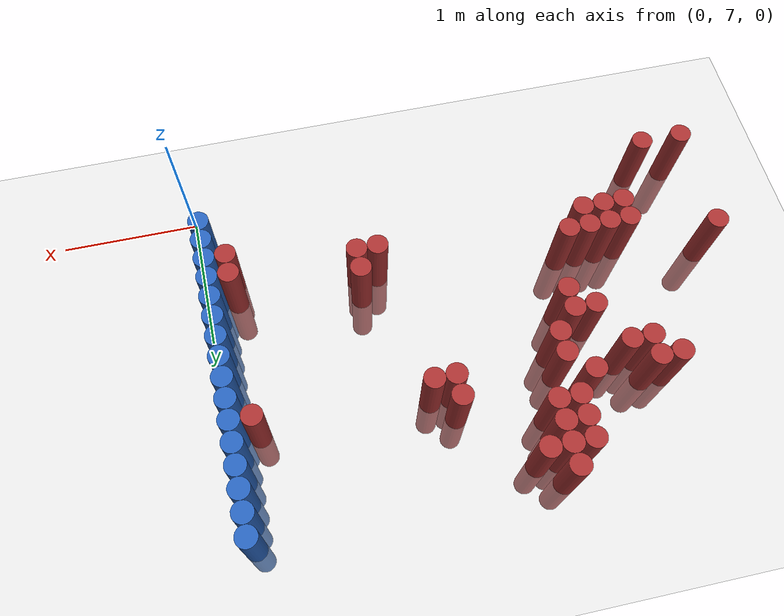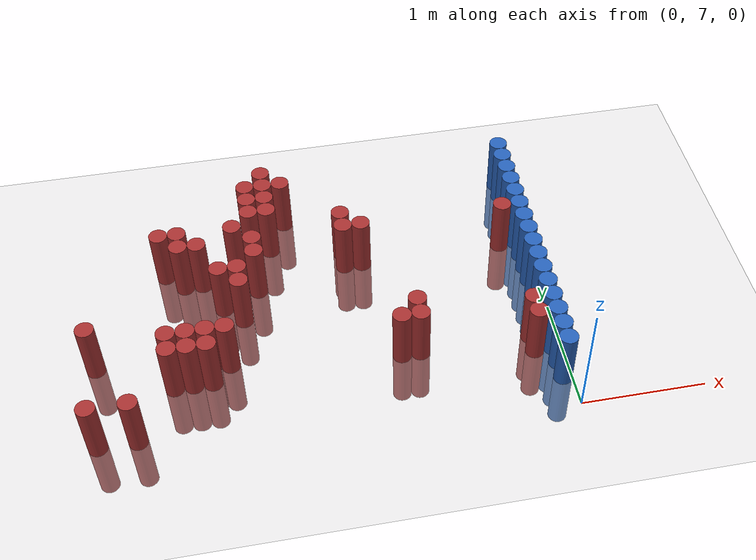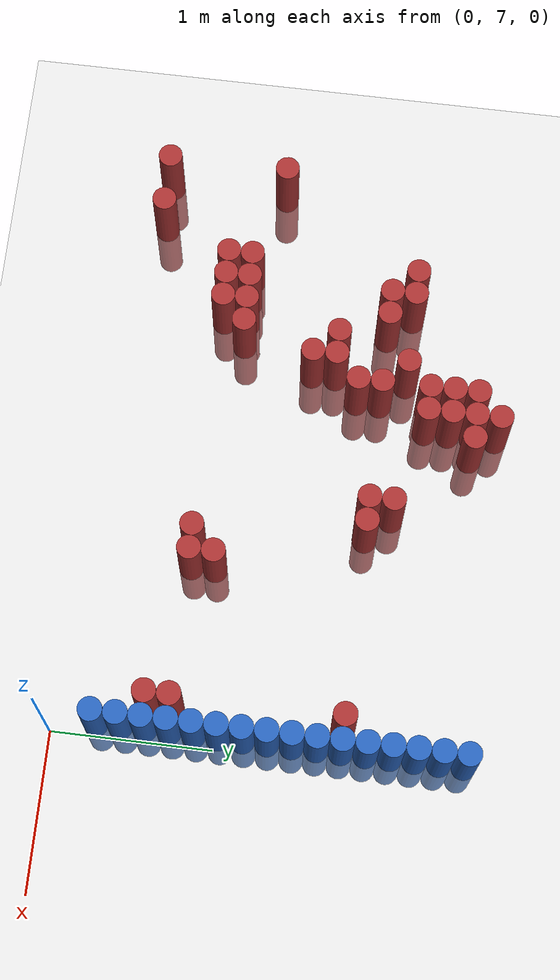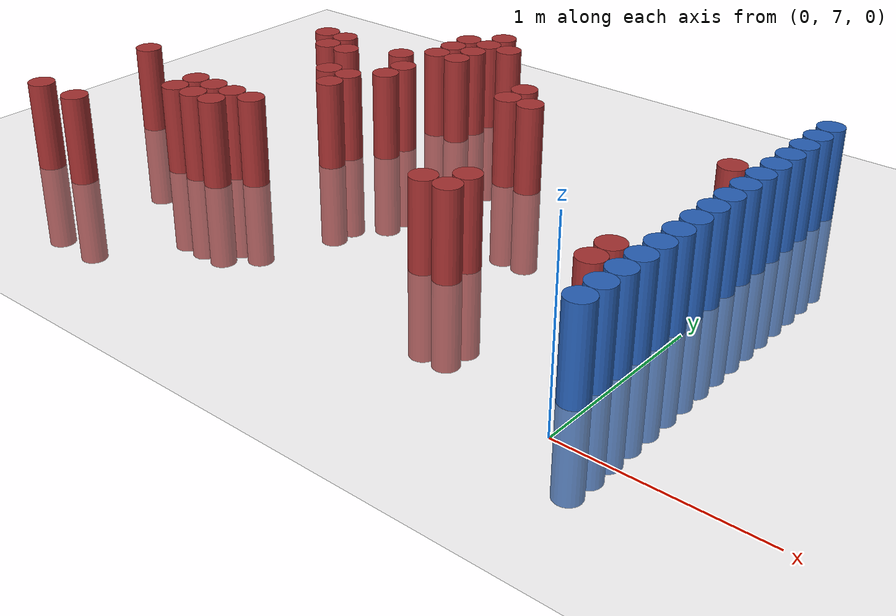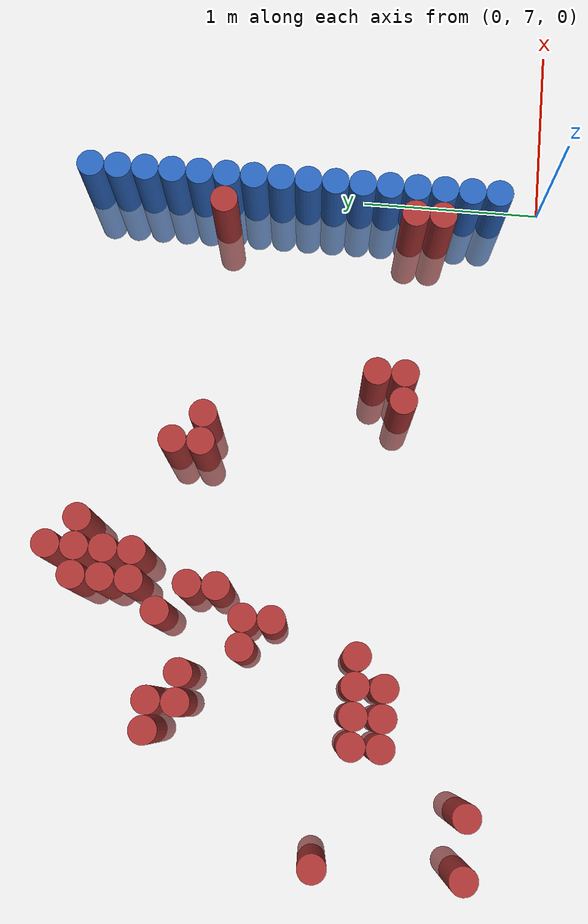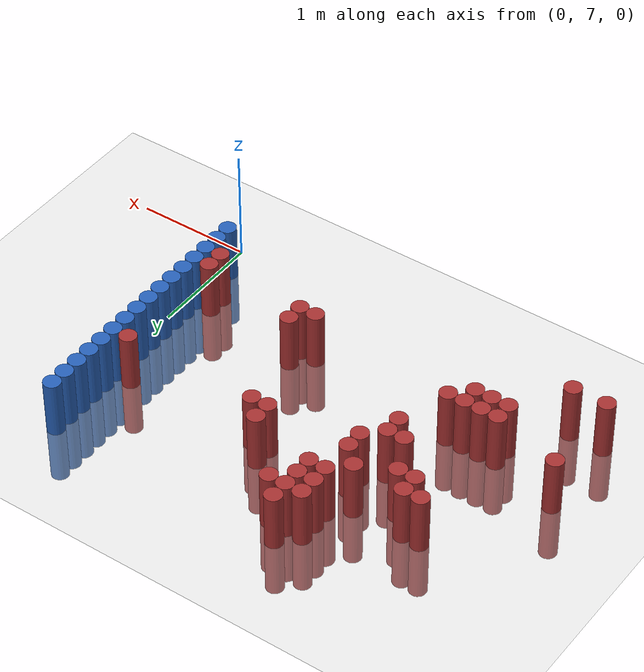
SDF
<sdf version="1.6">
 <world name="default">
  <model name="ground_plane">
   <static>1</static>
   <link name="link">
    <collision name="collision">
     <geometry><plane><normal>0 0 1</normal><size>100 100</size></plane></geometry>
     <surface><friction><ode><mu>100</mu><mu2>50</mu2></ode></friction></surface>
    </collision>
    <visual name="visual">
     <cast_shadows>0</cast_shadows>
     <geometry><plane><normal>0 0 1</normal><size>100 100</size></plane></geometry>
     <material>
      <script><uri>file://media/materials/scripts/gazebo.material</uri><name>Gazebo/Grey</name></script>
     </material>
    </visual>
   </link>
  </model>
  <model name="unit_cylinder_150">
   <static>1</static>
   <pose>-3.675000 7.275000 0.000000 0.000000 0.000000 0.000000</pose>
   <link name="link">
    <inertial>
     <mass>1</mass>
     <inertia><ixx>0.145833</ixx><ixy>0</ixy><ixz>0</ixz><iyy>0.145833</iyy><iyz>0</iyz><izz>0.125</izz></inertia>
    </inertial>
    <collision name="collision">
     <geometry><cylinder><radius>0.075000</radius><length>1</length></cylinder></geometry>
    </collision>
    <visual name="visual">
     <geometry><cylinder><radius>0.075000</radius><length>1</length></cylinder></geometry>
     <material>
      <ambient>0.648000 0.192000 0.192000 1</ambient>
      <diffuse>0.648000 0.192000 0.192000 1</diffuse>
     </material>
     <material>
      <script><name>Gazebo/Grey</name><uri>file://media/materials/scripts/gazebo.material</uri></script>
     </material>
    </visual>
   </link>
  </model>
  <model name="unit_cylinder_151">
   <static>1</static>
   <pose>-3.675000 8.025000 0.000000 0.000000 0.000000 0.000000</pose>
   <link name="link">
    <inertial>
     <mass>1</mass>
     <inertia><ixx>0.145833</ixx><ixy>0</ixy><ixz>0</ixz><iyy>0.145833</iyy><iyz>0</iyz><izz>0.125</izz></inertia>
    </inertial>
    <collision name="collision">
     <geometry><cylinder><radius>0.075000</radius><length>1</length></cylinder></geometry>
    </collision>
    <visual name="visual">
     <geometry><cylinder><radius>0.075000</radius><length>1</length></cylinder></geometry>
     <material>
      <ambient>0.648000 0.192000 0.192000 1</ambient>
      <diffuse>0.648000 0.192000 0.192000 1</diffuse>
     </material>
     <material>
      <script><name>Gazebo/Grey</name><uri>file://media/materials/scripts/gazebo.material</uri></script>
     </material>
    </visual>
   </link>
  </model>
  <model name="unit_cylinder_164">
   <static>1</static>
   <pose>-3.375000 7.275000 0.000000 0.000000 0.000000 0.000000</pose>
   <link name="link">
    <inertial>
     <mass>1</mass>
     <inertia><ixx>0.145833</ixx><ixy>0</ixy><ixz>0</ixz><iyy>0.145833</iyy><iyz>0</iyz><izz>0.125</izz></inertia>
    </inertial>
    <collision name="collision">
     <geometry><cylinder><radius>0.075000</radius><length>1</length></cylinder></geometry>
    </collision>
    <visual name="visual">
     <geometry><cylinder><radius>0.075000</radius><length>1</length></cylinder></geometry>
     <material>
      <ambient>0.648000 0.192000 0.192000 1</ambient>
      <diffuse>0.648000 0.192000 0.192000 1</diffuse>
     </material>
     <material>
      <script><name>Gazebo/Grey</name><uri>file://media/materials/scripts/gazebo.material</uri></script>
     </material>
    </visual>
   </link>
  </model>
  <model name="unit_cylinder_179">
   <static>1</static>
   <pose>-3.075000 7.725000 0.000000 0.000000 0.000000 0.000000</pose>
   <link name="link">
    <inertial>
     <mass>1</mass>
     <inertia><ixx>0.145833</ixx><ixy>0</ixy><ixz>0</ixz><iyy>0.145833</iyy><iyz>0</iyz><izz>0.125</izz></inertia>
    </inertial>
    <collision name="collision">
     <geometry><cylinder><radius>0.075000</radius><length>1</length></cylinder></geometry>
    </collision>
    <visual name="visual">
     <geometry><cylinder><radius>0.075000</radius><length>1</length></cylinder></geometry>
     <material>
      <ambient>0.648000 0.192000 0.192000 1</ambient>
      <diffuse>0.648000 0.192000 0.192000 1</diffuse>
     </material>
     <material>
      <script><name>Gazebo/Grey</name><uri>file://media/materials/scripts/gazebo.material</uri></script>
     </material>
    </visual>
   </link>
  </model>
  <model name="unit_cylinder_180">
   <static>1</static>
   <pose>-3.075000 7.875000 0.000000 0.000000 0.000000 0.000000</pose>
   <link name="link">
    <inertial>
     <mass>1</mass>
     <inertia><ixx>0.145833</ixx><ixy>0</ixy><ixz>0</ixz><iyy>0.145833</iyy><iyz>0</iyz><izz>0.125</izz></inertia>
    </inertial>
    <collision name="collision">
     <geometry><cylinder><radius>0.075000</radius><length>1</length></cylinder></geometry>
    </collision>
    <visual name="visual">
     <geometry><cylinder><radius>0.075000</radius><length>1</length></cylinder></geometry>
     <material>
      <ambient>0.648000 0.192000 0.192000 1</ambient>
      <diffuse>0.648000 0.192000 0.192000 1</diffuse>
     </material>
     <material>
      <script><name>Gazebo/Grey</name><uri>file://media/materials/scripts/gazebo.material</uri></script>
     </material>
    </visual>
   </link>
  </model>
  <model name="unit_cylinder_181">
   <static>1</static>
   <pose>-3.075000 8.925000 0.000000 0.000000 0.000000 0.000000</pose>
   <link name="link">
    <inertial>
     <mass>1</mass>
     <inertia><ixx>0.145833</ixx><ixy>0</ixy><ixz>0</ixz><iyy>0.145833</iyy><iyz>0</iyz><izz>0.125</izz></inertia>
    </inertial>
    <collision name="collision">
     <geometry><cylinder><radius>0.075000</radius><length>1</length></cylinder></geometry>
    </collision>
    <visual name="visual">
     <geometry><cylinder><radius>0.075000</radius><length>1</length></cylinder></geometry>
     <material>
      <ambient>0.648000 0.192000 0.192000 1</ambient>
      <diffuse>0.648000 0.192000 0.192000 1</diffuse>
     </material>
     <material>
      <script><name>Gazebo/Grey</name><uri>file://media/materials/scripts/gazebo.material</uri></script>
     </material>
    </visual>
   </link>
  </model>
  <model name="unit_cylinder_186">
   <static>1</static>
   <pose>-2.925000 7.725000 0.000000 0.000000 0.000000 0.000000</pose>
   <link name="link">
    <inertial>
     <mass>1</mass>
     <inertia><ixx>0.145833</ixx><ixy>0</ixy><ixz>0</ixz><iyy>0.145833</iyy><iyz>0</iyz><izz>0.125</izz></inertia>
    </inertial>
    <collision name="collision">
     <geometry><cylinder><radius>0.075000</radius><length>1</length></cylinder></geometry>
    </collision>
    <visual name="visual">
     <geometry><cylinder><radius>0.075000</radius><length>1</length></cylinder></geometry>
     <material>
      <ambient>0.648000 0.192000 0.192000 1</ambient>
      <diffuse>0.648000 0.192000 0.192000 1</diffuse>
     </material>
     <material>
      <script><name>Gazebo/Grey</name><uri>file://media/materials/scripts/gazebo.material</uri></script>
     </material>
    </visual>
   </link>
  </model>
  <model name="unit_cylinder_187">
   <static>1</static>
   <pose>-2.925000 7.875000 0.000000 0.000000 0.000000 0.000000</pose>
   <link name="link">
    <inertial>
     <mass>1</mass>
     <inertia><ixx>0.145833</ixx><ixy>0</ixy><ixz>0</ixz><iyy>0.145833</iyy><iyz>0</iyz><izz>0.125</izz></inertia>
    </inertial>
    <collision name="collision">
     <geometry><cylinder><radius>0.075000</radius><length>1</length></cylinder></geometry>
    </collision>
    <visual name="visual">
     <geometry><cylinder><radius>0.075000</radius><length>1</length></cylinder></geometry>
     <material>
      <ambient>0.648000 0.192000 0.192000 1</ambient>
      <diffuse>0.648000 0.192000 0.192000 1</diffuse>
     </material>
     <material>
      <script><name>Gazebo/Grey</name><uri>file://media/materials/scripts/gazebo.material</uri></script>
     </material>
    </visual>
   </link>
  </model>
  <model name="unit_cylinder_188">
   <static>1</static>
   <pose>-2.925000 8.775000 0.000000 0.000000 0.000000 0.000000</pose>
   <link name="link">
    <inertial>
     <mass>1</mass>
     <inertia><ixx>0.145833</ixx><ixy>0</ixy><ixz>0</ixz><iyy>0.145833</iyy><iyz>0</iyz><izz>0.125</izz></inertia>
    </inertial>
    <collision name="collision">
     <geometry><cylinder><radius>0.075000</radius><length>1</length></cylinder></geometry>
    </collision>
    <visual name="visual">
     <geometry><cylinder><radius>0.075000</radius><length>1</length></cylinder></geometry>
     <material>
      <ambient>0.648000 0.192000 0.192000 1</ambient>
      <diffuse>0.648000 0.192000 0.192000 1</diffuse>
     </material>
     <material>
      <script><name>Gazebo/Grey</name><uri>file://media/materials/scripts/gazebo.material</uri></script>
     </material>
    </visual>
   </link>
  </model>
  <model name="unit_cylinder_189">
   <static>1</static>
   <pose>-2.925000 8.925000 0.000000 0.000000 0.000000 0.000000</pose>
   <link name="link">
    <inertial>
     <mass>1</mass>
     <inertia><ixx>0.145833</ixx><ixy>0</ixy><ixz>0</ixz><iyy>0.145833</iyy><iyz>0</iyz><izz>0.125</izz></inertia>
    </inertial>
    <collision name="collision">
     <geometry><cylinder><radius>0.075000</radius><length>1</length></cylinder></geometry>
    </collision>
    <visual name="visual">
     <geometry><cylinder><radius>0.075000</radius><length>1</length></cylinder></geometry>
     <material>
      <ambient>0.648000 0.192000 0.192000 1</ambient>
      <diffuse>0.648000 0.192000 0.192000 1</diffuse>
     </material>
     <material>
      <script><name>Gazebo/Grey</name><uri>file://media/materials/scripts/gazebo.material</uri></script>
     </material>
    </visual>
   </link>
  </model>
  <model name="unit_cylinder_191">
   <static>1</static>
   <pose>-2.775000 7.725000 0.000000 0.000000 0.000000 0.000000</pose>
   <link name="link">
    <inertial>
     <mass>1</mass>
     <inertia><ixx>0.145833</ixx><ixy>0</ixy><ixz>0</ixz><iyy>0.145833</iyy><iyz>0</iyz><izz>0.125</izz></inertia>
    </inertial>
    <collision name="collision">
     <geometry><cylinder><radius>0.075000</radius><length>1</length></cylinder></geometry>
    </collision>
    <visual name="visual">
     <geometry><cylinder><radius>0.075000</radius><length>1</length></cylinder></geometry>
     <material>
      <ambient>0.648000 0.192000 0.192000 1</ambient>
      <diffuse>0.648000 0.192000 0.192000 1</diffuse>
     </material>
     <material>
      <script><name>Gazebo/Grey</name><uri>file://media/materials/scripts/gazebo.material</uri></script>
     </material>
    </visual>
   </link>
  </model>
  <model name="unit_cylinder_192">
   <static>1</static>
   <pose>-2.775000 7.875000 0.000000 0.000000 0.000000 0.000000</pose>
   <link name="link">
    <inertial>
     <mass>1</mass>
     <inertia><ixx>0.145833</ixx><ixy>0</ixy><ixz>0</ixz><iyy>0.145833</iyy><iyz>0</iyz><izz>0.125</izz></inertia>
    </inertial>
    <collision name="collision">
     <geometry><cylinder><radius>0.075000</radius><length>1</length></cylinder></geometry>
    </collision>
    <visual name="visual">
     <geometry><cylinder><radius>0.075000</radius><length>1</length></cylinder></geometry>
     <material>
      <ambient>0.648000 0.192000 0.192000 1</ambient>
      <diffuse>0.648000 0.192000 0.192000 1</diffuse>
     </material>
     <material>
      <script><name>Gazebo/Grey</name><uri>file://media/materials/scripts/gazebo.material</uri></script>
     </material>
    </visual>
   </link>
  </model>
  <model name="unit_cylinder_193">
   <static>1</static>
   <pose>-2.775000 8.775000 0.000000 0.000000 0.000000 0.000000</pose>
   <link name="link">
    <inertial>
     <mass>1</mass>
     <inertia><ixx>0.145833</ixx><ixy>0</ixy><ixz>0</ixz><iyy>0.145833</iyy><iyz>0</iyz><izz>0.125</izz></inertia>
    </inertial>
    <collision name="collision">
     <geometry><cylinder><radius>0.075000</radius><length>1</length></cylinder></geometry>
    </collision>
    <visual name="visual">
     <geometry><cylinder><radius>0.075000</radius><length>1</length></cylinder></geometry>
     <material>
      <ambient>0.648000 0.192000 0.192000 1</ambient>
      <diffuse>0.648000 0.192000 0.192000 1</diffuse>
     </material>
     <material>
      <script><name>Gazebo/Grey</name><uri>file://media/materials/scripts/gazebo.material</uri></script>
     </material>
    </visual>
   </link>
  </model>
  <model name="unit_cylinder_194">
   <static>1</static>
   <pose>-2.625000 7.875000 0.000000 0.000000 0.000000 0.000000</pose>
   <link name="link">
    <inertial>
     <mass>1</mass>
     <inertia><ixx>0.145833</ixx><ixy>0</ixy><ixz>0</ixz><iyy>0.145833</iyy><iyz>0</iyz><izz>0.125</izz></inertia>
    </inertial>
    <collision name="collision">
     <geometry><cylinder><radius>0.075000</radius><length>1</length></cylinder></geometry>
    </collision>
    <visual name="visual">
     <geometry><cylinder><radius>0.075000</radius><length>1</length></cylinder></geometry>
     <material>
      <ambient>0.648000 0.192000 0.192000 1</ambient>
      <diffuse>0.648000 0.192000 0.192000 1</diffuse>
     </material>
     <material>
      <script><name>Gazebo/Grey</name><uri>file://media/materials/scripts/gazebo.material</uri></script>
     </material>
    </visual>
   </link>
  </model>
  <model name="unit_cylinder_195">
   <static>1</static>
   <pose>-2.625000 8.475000 0.000000 0.000000 0.000000 0.000000</pose>
   <link name="link">
    <inertial>
     <mass>1</mass>
     <inertia><ixx>0.145833</ixx><ixy>0</ixy><ixz>0</ixz><iyy>0.145833</iyy><iyz>0</iyz><izz>0.125</izz></inertia>
    </inertial>
    <collision name="collision">
     <geometry><cylinder><radius>0.075000</radius><length>1</length></cylinder></geometry>
    </collision>
    <visual name="visual">
     <geometry><cylinder><radius>0.075000</radius><length>1</length></cylinder></geometry>
     <material>
      <ambient>0.648000 0.192000 0.192000 1</ambient>
      <diffuse>0.648000 0.192000 0.192000 1</diffuse>
     </material>
     <material>
      <script><name>Gazebo/Grey</name><uri>file://media/materials/scripts/gazebo.material</uri></script>
     </material>
    </visual>
   </link>
  </model>
  <model name="unit_cylinder_196">
   <static>1</static>
   <pose>-2.475000 8.325000 0.000000 0.000000 0.000000 0.000000</pose>
   <link name="link">
    <inertial>
     <mass>1</mass>
     <inertia><ixx>0.145833</ixx><ixy>0</ixy><ixz>0</ixz><iyy>0.145833</iyy><iyz>0</iyz><izz>0.125</izz></inertia>
    </inertial>
    <collision name="collision">
     <geometry><cylinder><radius>0.075000</radius><length>1</length></cylinder></geometry>
    </collision>
    <visual name="visual">
     <geometry><cylinder><radius>0.075000</radius><length>1</length></cylinder></geometry>
     <material>
      <ambient>0.648000 0.192000 0.192000 1</ambient>
      <diffuse>0.648000 0.192000 0.192000 1</diffuse>
     </material>
     <material>
      <script><name>Gazebo/Grey</name><uri>file://media/materials/scripts/gazebo.material</uri></script>
     </material>
    </visual>
   </link>
  </model>
  <model name="unit_cylinder_197">
   <static>1</static>
   <pose>-2.475000 8.475000 0.000000 0.000000 0.000000 0.000000</pose>
   <link name="link">
    <inertial>
     <mass>1</mass>
     <inertia><ixx>0.145833</ixx><ixy>0</ixy><ixz>0</ixz><iyy>0.145833</iyy><iyz>0</iyz><izz>0.125</izz></inertia>
    </inertial>
    <collision name="collision">
     <geometry><cylinder><radius>0.075000</radius><length>1</length></cylinder></geometry>
    </collision>
    <visual name="visual">
     <geometry><cylinder><radius>0.075000</radius><length>1</length></cylinder></geometry>
     <material>
      <ambient>0.648000 0.192000 0.192000 1</ambient>
      <diffuse>0.648000 0.192000 0.192000 1</diffuse>
     </material>
     <material>
      <script><name>Gazebo/Grey</name><uri>file://media/materials/scripts/gazebo.material</uri></script>
     </material>
    </visual>
   </link>
  </model>
  <model name="unit_cylinder_198">
   <static>1</static>
   <pose>-2.475000 8.925000 0.000000 0.000000 0.000000 0.000000</pose>
   <link name="link">
    <inertial>
     <mass>1</mass>
     <inertia><ixx>0.145833</ixx><ixy>0</ixy><ixz>0</ixz><iyy>0.145833</iyy><iyz>0</iyz><izz>0.125</izz></inertia>
    </inertial>
    <collision name="collision">
     <geometry><cylinder><radius>0.075000</radius><length>1</length></cylinder></geometry>
    </collision>
    <visual name="visual">
     <geometry><cylinder><radius>0.075000</radius><length>1</length></cylinder></geometry>
     <material>
      <ambient>0.648000 0.192000 0.192000 1</ambient>
      <diffuse>0.648000 0.192000 0.192000 1</diffuse>
     </material>
     <material>
      <script><name>Gazebo/Grey</name><uri>file://media/materials/scripts/gazebo.material</uri></script>
     </material>
    </visual>
   </link>
  </model>
  <model name="unit_cylinder_199">
   <static>1</static>
   <pose>-2.325000 8.625000 0.000000 0.000000 0.000000 0.000000</pose>
   <link name="link">
    <inertial>
     <mass>1</mass>
     <inertia><ixx>0.145833</ixx><ixy>0</ixy><ixz>0</ixz><iyy>0.145833</iyy><iyz>0</iyz><izz>0.125</izz></inertia>
    </inertial>
    <collision name="collision">
     <geometry><cylinder><radius>0.075000</radius><length>1</length></cylinder></geometry>
    </collision>
    <visual name="visual">
     <geometry><cylinder><radius>0.075000</radius><length>1</length></cylinder></geometry>
     <material>
      <ambient>0.648000 0.192000 0.192000 1</ambient>
      <diffuse>0.648000 0.192000 0.192000 1</diffuse>
     </material>
     <material>
      <script><name>Gazebo/Grey</name><uri>file://media/materials/scripts/gazebo.material</uri></script>
     </material>
    </visual>
   </link>
  </model>
  <model name="unit_cylinder_200">
   <static>1</static>
   <pose>-2.325000 8.775000 0.000000 0.000000 0.000000 0.000000</pose>
   <link name="link">
    <inertial>
     <mass>1</mass>
     <inertia><ixx>0.145833</ixx><ixy>0</ixy><ixz>0</ixz><iyy>0.145833</iyy><iyz>0</iyz><izz>0.125</izz></inertia>
    </inertial>
    <collision name="collision">
     <geometry><cylinder><radius>0.075000</radius><length>1</length></cylinder></geometry>
    </collision>
    <visual name="visual">
     <geometry><cylinder><radius>0.075000</radius><length>1</length></cylinder></geometry>
     <material>
      <ambient>0.648000 0.192000 0.192000 1</ambient>
      <diffuse>0.648000 0.192000 0.192000 1</diffuse>
     </material>
     <material>
      <script><name>Gazebo/Grey</name><uri>file://media/materials/scripts/gazebo.material</uri></script>
     </material>
    </visual>
   </link>
  </model>
  <model name="unit_cylinder_201">
   <static>1</static>
   <pose>-2.325000 9.075000 0.000000 0.000000 0.000000 0.000000</pose>
   <link name="link">
    <inertial>
     <mass>1</mass>
     <inertia><ixx>0.145833</ixx><ixy>0</ixy><ixz>0</ixz><iyy>0.145833</iyy><iyz>0</iyz><izz>0.125</izz></inertia>
    </inertial>
    <collision name="collision">
     <geometry><cylinder><radius>0.075000</radius><length>1</length></cylinder></geometry>
    </collision>
    <visual name="visual">
     <geometry><cylinder><radius>0.075000</radius><length>1</length></cylinder></geometry>
     <material>
      <ambient>0.648000 0.192000 0.192000 1</ambient>
      <diffuse>0.648000 0.192000 0.192000 1</diffuse>
     </material>
     <material>
      <script><name>Gazebo/Grey</name><uri>file://media/materials/scripts/gazebo.material</uri></script>
     </material>
    </visual>
   </link>
  </model>
  <model name="unit_cylinder_202">
   <static>1</static>
   <pose>-2.325000 9.225000 0.000000 0.000000 0.000000 0.000000</pose>
   <link name="link">
    <inertial>
     <mass>1</mass>
     <inertia><ixx>0.145833</ixx><ixy>0</ixy><ixz>0</ixz><iyy>0.145833</iyy><iyz>0</iyz><izz>0.125</izz></inertia>
    </inertial>
    <collision name="collision">
     <geometry><cylinder><radius>0.075000</radius><length>1</length></cylinder></geometry>
    </collision>
    <visual name="visual">
     <geometry><cylinder><radius>0.075000</radius><length>1</length></cylinder></geometry>
     <material>
      <ambient>0.648000 0.192000 0.192000 1</ambient>
      <diffuse>0.648000 0.192000 0.192000 1</diffuse>
     </material>
     <material>
      <script><name>Gazebo/Grey</name><uri>file://media/materials/scripts/gazebo.material</uri></script>
     </material>
    </visual>
   </link>
  </model>
  <model name="unit_cylinder_203">
   <static>1</static>
   <pose>-2.325000 9.375000 0.000000 0.000000 0.000000 0.000000</pose>
   <link name="link">
    <inertial>
     <mass>1</mass>
     <inertia><ixx>0.145833</ixx><ixy>0</ixy><ixz>0</ixz><iyy>0.145833</iyy><iyz>0</iyz><izz>0.125</izz></inertia>
    </inertial>
    <collision name="collision">
     <geometry><cylinder><radius>0.075000</radius><length>1</length></cylinder></geometry>
    </collision>
    <visual name="visual">
     <geometry><cylinder><radius>0.075000</radius><length>1</length></cylinder></geometry>
     <material>
      <ambient>0.648000 0.192000 0.192000 1</ambient>
      <diffuse>0.648000 0.192000 0.192000 1</diffuse>
     </material>
     <material>
      <script><name>Gazebo/Grey</name><uri>file://media/materials/scripts/gazebo.material</uri></script>
     </material>
    </visual>
   </link>
  </model>
  <model name="unit_cylinder_204">
   <static>1</static>
   <pose>-2.175000 9.075000 0.000000 0.000000 0.000000 0.000000</pose>
   <link name="link">
    <inertial>
     <mass>1</mass>
     <inertia><ixx>0.145833</ixx><ixy>0</ixy><ixz>0</ixz><iyy>0.145833</iyy><iyz>0</iyz><izz>0.125</izz></inertia>
    </inertial>
    <collision name="collision">
     <geometry><cylinder><radius>0.075000</radius><length>1</length></cylinder></geometry>
    </collision>
    <visual name="visual">
     <geometry><cylinder><radius>0.075000</radius><length>1</length></cylinder></geometry>
     <material>
      <ambient>0.648000 0.192000 0.192000 1</ambient>
      <diffuse>0.648000 0.192000 0.192000 1</diffuse>
     </material>
     <material>
      <script><name>Gazebo/Grey</name><uri>file://media/materials/scripts/gazebo.material</uri></script>
     </material>
    </visual>
   </link>
  </model>
  <model name="unit_cylinder_205">
   <static>1</static>
   <pose>-2.175000 9.225000 0.000000 0.000000 0.000000 0.000000</pose>
   <link name="link">
    <inertial>
     <mass>1</mass>
     <inertia><ixx>0.145833</ixx><ixy>0</ixy><ixz>0</ixz><iyy>0.145833</iyy><iyz>0</iyz><izz>0.125</izz></inertia>
    </inertial>
    <collision name="collision">
     <geometry><cylinder><radius>0.075000</radius><length>1</length></cylinder></geometry>
    </collision>
    <visual name="visual">
     <geometry><cylinder><radius>0.075000</radius><length>1</length></cylinder></geometry>
     <material>
      <ambient>0.648000 0.192000 0.192000 1</ambient>
      <diffuse>0.648000 0.192000 0.192000 1</diffuse>
     </material>
     <material>
      <script><name>Gazebo/Grey</name><uri>file://media/materials/scripts/gazebo.material</uri></script>
     </material>
    </visual>
   </link>
  </model>
  <model name="unit_cylinder_206">
   <static>1</static>
   <pose>-2.175000 9.375000 0.000000 0.000000 0.000000 0.000000</pose>
   <link name="link">
    <inertial>
     <mass>1</mass>
     <inertia><ixx>0.145833</ixx><ixy>0</ixy><ixz>0</ixz><iyy>0.145833</iyy><iyz>0</iyz><izz>0.125</izz></inertia>
    </inertial>
    <collision name="collision">
     <geometry><cylinder><radius>0.075000</radius><length>1</length></cylinder></geometry>
    </collision>
    <visual name="visual">
     <geometry><cylinder><radius>0.075000</radius><length>1</length></cylinder></geometry>
     <material>
      <ambient>0.648000 0.192000 0.192000 1</ambient>
      <diffuse>0.648000 0.192000 0.192000 1</diffuse>
     </material>
     <material>
      <script><name>Gazebo/Grey</name><uri>file://media/materials/scripts/gazebo.material</uri></script>
     </material>
    </visual>
   </link>
  </model>
  <model name="unit_cylinder_207">
   <static>1</static>
   <pose>-2.175000 9.525000 0.000000 0.000000 0.000000 0.000000</pose>
   <link name="link">
    <inertial>
     <mass>1</mass>
     <inertia><ixx>0.145833</ixx><ixy>0</ixy><ixz>0</ixz><iyy>0.145833</iyy><iyz>0</iyz><izz>0.125</izz></inertia>
    </inertial>
    <collision name="collision">
     <geometry><cylinder><radius>0.075000</radius><length>1</length></cylinder></geometry>
    </collision>
    <visual name="visual">
     <geometry><cylinder><radius>0.075000</radius><length>1</length></cylinder></geometry>
     <material>
      <ambient>0.648000 0.192000 0.192000 1</ambient>
      <diffuse>0.648000 0.192000 0.192000 1</diffuse>
     </material>
     <material>
      <script><name>Gazebo/Grey</name><uri>file://media/materials/scripts/gazebo.material</uri></script>
     </material>
    </visual>
   </link>
  </model>
  <model name="unit_cylinder_208">
   <static>1</static>
   <pose>-2.025000 9.375000 0.000000 0.000000 0.000000 0.000000</pose>
   <link name="link">
    <inertial>
     <mass>1</mass>
     <inertia><ixx>0.145833</ixx><ixy>0</ixy><ixz>0</ixz><iyy>0.145833</iyy><iyz>0</iyz><izz>0.125</izz></inertia>
    </inertial>
    <collision name="collision">
     <geometry><cylinder><radius>0.075000</radius><length>1</length></cylinder></geometry>
    </collision>
    <visual name="visual">
     <geometry><cylinder><radius>0.075000</radius><length>1</length></cylinder></geometry>
     <material>
      <ambient>0.648000 0.192000 0.192000 1</ambient>
      <diffuse>0.648000 0.192000 0.192000 1</diffuse>
     </material>
     <material>
      <script><name>Gazebo/Grey</name><uri>file://media/materials/scripts/gazebo.material</uri></script>
     </material>
    </visual>
   </link>
  </model>
  <model name="unit_cylinder_215">
   <static>1</static>
   <pose>-1.575000 8.775000 0.000000 0.000000 0.000000 0.000000</pose>
   <link name="link">
    <inertial>
     <mass>1</mass>
     <inertia><ixx>0.145833</ixx><ixy>0</ixy><ixz>0</ixz><iyy>0.145833</iyy><iyz>0</iyz><izz>0.125</izz></inertia>
    </inertial>
    <collision name="collision">
     <geometry><cylinder><radius>0.075000</radius><length>1</length></cylinder></geometry>
    </collision>
    <visual name="visual">
     <geometry><cylinder><radius>0.075000</radius><length>1</length></cylinder></geometry>
     <material>
      <ambient>0.648000 0.192000 0.192000 1</ambient>
      <diffuse>0.648000 0.192000 0.192000 1</diffuse>
     </material>
     <material>
      <script><name>Gazebo/Grey</name><uri>file://media/materials/scripts/gazebo.material</uri></script>
     </material>
    </visual>
   </link>
  </model>
  <model name="unit_cylinder_216">
   <static>1</static>
   <pose>-1.575000 8.925000 0.000000 0.000000 0.000000 0.000000</pose>
   <link name="link">
    <inertial>
     <mass>1</mass>
     <inertia><ixx>0.145833</ixx><ixy>0</ixy><ixz>0</ixz><iyy>0.145833</iyy><iyz>0</iyz><izz>0.125</izz></inertia>
    </inertial>
    <collision name="collision">
     <geometry><cylinder><radius>0.075000</radius><length>1</length></cylinder></geometry>
    </collision>
    <visual name="visual">
     <geometry><cylinder><radius>0.075000</radius><length>1</length></cylinder></geometry>
     <material>
      <ambient>0.648000 0.192000 0.192000 1</ambient>
      <diffuse>0.648000 0.192000 0.192000 1</diffuse>
     </material>
     <material>
      <script><name>Gazebo/Grey</name><uri>file://media/materials/scripts/gazebo.material</uri></script>
     </material>
    </visual>
   </link>
  </model>
  <model name="unit_cylinder_218">
   <static>1</static>
   <pose>-1.425000 8.775000 0.000000 0.000000 0.000000 0.000000</pose>
   <link name="link">
    <inertial>
     <mass>1</mass>
     <inertia><ixx>0.145833</ixx><ixy>0</ixy><ixz>0</ixz><iyy>0.145833</iyy><iyz>0</iyz><izz>0.125</izz></inertia>
    </inertial>
    <collision name="collision">
     <geometry><cylinder><radius>0.075000</radius><length>1</length></cylinder></geometry>
    </collision>
    <visual name="visual">
     <geometry><cylinder><radius>0.075000</radius><length>1</length></cylinder></geometry>
     <material>
      <ambient>0.648000 0.192000 0.192000 1</ambient>
      <diffuse>0.648000 0.192000 0.192000 1</diffuse>
     </material>
     <material>
      <script><name>Gazebo/Grey</name><uri>file://media/materials/scripts/gazebo.material</uri></script>
     </material>
    </visual>
   </link>
  </model>
  <model name="unit_cylinder_219">
   <static>1</static>
   <pose>-1.275000 7.725000 0.000000 0.000000 0.000000 0.000000</pose>
   <link name="link">
    <inertial>
     <mass>1</mass>
     <inertia><ixx>0.145833</ixx><ixy>0</ixy><ixz>0</ixz><iyy>0.145833</iyy><iyz>0</iyz><izz>0.125</izz></inertia>
    </inertial>
    <collision name="collision">
     <geometry><cylinder><radius>0.075000</radius><length>1</length></cylinder></geometry>
    </collision>
    <visual name="visual">
     <geometry><cylinder><radius>0.075000</radius><length>1</length></cylinder></geometry>
     <material>
      <ambient>0.648000 0.192000 0.192000 1</ambient>
      <diffuse>0.648000 0.192000 0.192000 1</diffuse>
     </material>
     <material>
      <script><name>Gazebo/Grey</name><uri>file://media/materials/scripts/gazebo.material</uri></script>
     </material>
    </visual>
   </link>
  </model>
  <model name="unit_cylinder_220">
   <static>1</static>
   <pose>-1.125000 7.725000 0.000000 0.000000 0.000000 0.000000</pose>
   <link name="link">
    <inertial>
     <mass>1</mass>
     <inertia><ixx>0.145833</ixx><ixy>0</ixy><ixz>0</ixz><iyy>0.145833</iyy><iyz>0</iyz><izz>0.125</izz></inertia>
    </inertial>
    <collision name="collision">
     <geometry><cylinder><radius>0.075000</radius><length>1</length></cylinder></geometry>
    </collision>
    <visual name="visual">
     <geometry><cylinder><radius>0.075000</radius><length>1</length></cylinder></geometry>
     <material>
      <ambient>0.648000 0.192000 0.192000 1</ambient>
      <diffuse>0.648000 0.192000 0.192000 1</diffuse>
     </material>
     <material>
      <script><name>Gazebo/Grey</name><uri>file://media/materials/scripts/gazebo.material</uri></script>
     </material>
    </visual>
   </link>
  </model>
  <model name="unit_cylinder_221">
   <static>1</static>
   <pose>-1.125000 7.875000 0.000000 0.000000 0.000000 0.000000</pose>
   <link name="link">
    <inertial>
     <mass>1</mass>
     <inertia><ixx>0.145833</ixx><ixy>0</ixy><ixz>0</ixz><iyy>0.145833</iyy><iyz>0</iyz><izz>0.125</izz></inertia>
    </inertial>
    <collision name="collision">
     <geometry><cylinder><radius>0.075000</radius><length>1</length></cylinder></geometry>
    </collision>
    <visual name="visual">
     <geometry><cylinder><radius>0.075000</radius><length>1</length></cylinder></geometry>
     <material>
      <ambient>0.648000 0.192000 0.192000 1</ambient>
      <diffuse>0.648000 0.192000 0.192000 1</diffuse>
     </material>
     <material>
      <script><name>Gazebo/Grey</name><uri>file://media/materials/scripts/gazebo.material</uri></script>
     </material>
    </visual>
   </link>
  </model>
  <model name="unit_cylinder_229">
   <static>1</static>
   <pose>-0.225000 7.575000 0.000000 0.000000 0.000000 0.000000</pose>
   <link name="link">
    <inertial>
     <mass>1</mass>
     <inertia><ixx>0.145833</ixx><ixy>0</ixy><ixz>0</ixz><iyy>0.145833</iyy><iyz>0</iyz><izz>0.125</izz></inertia>
    </inertial>
    <collision name="collision">
     <geometry><cylinder><radius>0.075000</radius><length>1</length></cylinder></geometry>
    </collision>
    <visual name="visual">
     <geometry><cylinder><radius>0.075000</radius><length>1</length></cylinder></geometry>
     <material>
      <ambient>0.648000 0.192000 0.192000 1</ambient>
      <diffuse>0.648000 0.192000 0.192000 1</diffuse>
     </material>
     <material>
      <script><name>Gazebo/Grey</name><uri>file://media/materials/scripts/gazebo.material</uri></script>
     </material>
    </visual>
   </link>
  </model>
  <model name="unit_cylinder_230">
   <static>1</static>
   <pose>-0.225000 7.725000 0.000000 0.000000 0.000000 0.000000</pose>
   <link name="link">
    <inertial>
     <mass>1</mass>
     <inertia><ixx>0.145833</ixx><ixy>0</ixy><ixz>0</ixz><iyy>0.145833</iyy><iyz>0</iyz><izz>0.125</izz></inertia>
    </inertial>
    <collision name="collision">
     <geometry><cylinder><radius>0.075000</radius><length>1</length></cylinder></geometry>
    </collision>
    <visual name="visual">
     <geometry><cylinder><radius>0.075000</radius><length>1</length></cylinder></geometry>
     <material>
      <ambient>0.648000 0.192000 0.192000 1</ambient>
      <diffuse>0.648000 0.192000 0.192000 1</diffuse>
     </material>
     <material>
      <script><name>Gazebo/Grey</name><uri>file://media/materials/scripts/gazebo.material</uri></script>
     </material>
    </visual>
   </link>
  </model>
  <model name="unit_cylinder_231">
   <static>1</static>
   <pose>-0.225000 8.775000 0.000000 0.000000 0.000000 0.000000</pose>
   <link name="link">
    <inertial>
     <mass>1</mass>
     <inertia><ixx>0.145833</ixx><ixy>0</ixy><ixz>0</ixz><iyy>0.145833</iyy><iyz>0</iyz><izz>0.125</izz></inertia>
    </inertial>
    <collision name="collision">
     <geometry><cylinder><radius>0.075000</radius><length>1</length></cylinder></geometry>
    </collision>
    <visual name="visual">
     <geometry><cylinder><radius>0.075000</radius><length>1</length></cylinder></geometry>
     <material>
      <ambient>0.648000 0.192000 0.192000 1</ambient>
      <diffuse>0.648000 0.192000 0.192000 1</diffuse>
     </material>
     <material>
      <script><name>Gazebo/Grey</name><uri>file://media/materials/scripts/gazebo.material</uri></script>
     </material>
    </visual>
   </link>
  </model>
  <model name="unit_cylinder_246">
   <static>1</static>
   <pose>-0.075000 7.275000 0.000000 0.000000 0.000000 0.000000</pose>
   <link name="link">
    <inertial>
     <mass>1</mass>
     <inertia><ixx>0.145833</ixx><ixy>0</ixy><ixz>0</ixz><iyy>0.145833</iyy><iyz>0</iyz><izz>0.125</izz></inertia>
    </inertial>
    <collision name="collision">
     <geometry><cylinder><radius>0.075000</radius><length>1</length></cylinder></geometry>
    </collision>
    <visual name="visual">
     <geometry><cylinder><radius>0.075000</radius><length>1</length></cylinder></geometry>
     <material>
      <ambient>0.152000 0.379000 0.720000 1</ambient>
      <diffuse>0.152000 0.379000 0.720000 1</diffuse>
     </material>
     <material>
      <script><name>Gazebo/Grey</name><uri>file://media/materials/scripts/gazebo.material</uri></script>
     </material>
    </visual>
   </link>
  </model>
  <model name="unit_cylinder_247">
   <static>1</static>
   <pose>-0.075000 7.425000 0.000000 0.000000 0.000000 0.000000</pose>
   <link name="link">
    <inertial>
     <mass>1</mass>
     <inertia><ixx>0.145833</ixx><ixy>0</ixy><ixz>0</ixz><iyy>0.145833</iyy><iyz>0</iyz><izz>0.125</izz></inertia>
    </inertial>
    <collision name="collision">
     <geometry><cylinder><radius>0.075000</radius><length>1</length></cylinder></geometry>
    </collision>
    <visual name="visual">
     <geometry><cylinder><radius>0.075000</radius><length>1</length></cylinder></geometry>
     <material>
      <ambient>0.152000 0.379000 0.720000 1</ambient>
      <diffuse>0.152000 0.379000 0.720000 1</diffuse>
     </material>
     <material>
      <script><name>Gazebo/Grey</name><uri>file://media/materials/scripts/gazebo.material</uri></script>
     </material>
    </visual>
   </link>
  </model>
  <model name="unit_cylinder_248">
   <static>1</static>
   <pose>-0.075000 7.575000 0.000000 0.000000 0.000000 0.000000</pose>
   <link name="link">
    <inertial>
     <mass>1</mass>
     <inertia><ixx>0.145833</ixx><ixy>0</ixy><ixz>0</ixz><iyy>0.145833</iyy><iyz>0</iyz><izz>0.125</izz></inertia>
    </inertial>
    <collision name="collision">
     <geometry><cylinder><radius>0.075000</radius><length>1</length></cylinder></geometry>
    </collision>
    <visual name="visual">
     <geometry><cylinder><radius>0.075000</radius><length>1</length></cylinder></geometry>
     <material>
      <ambient>0.152000 0.379000 0.720000 1</ambient>
      <diffuse>0.152000 0.379000 0.720000 1</diffuse>
     </material>
     <material>
      <script><name>Gazebo/Grey</name><uri>file://media/materials/scripts/gazebo.material</uri></script>
     </material>
    </visual>
   </link>
  </model>
  <model name="unit_cylinder_249">
   <static>1</static>
   <pose>-0.075000 7.725000 0.000000 0.000000 0.000000 0.000000</pose>
   <link name="link">
    <inertial>
     <mass>1</mass>
     <inertia><ixx>0.145833</ixx><ixy>0</ixy><ixz>0</ixz><iyy>0.145833</iyy><iyz>0</iyz><izz>0.125</izz></inertia>
    </inertial>
    <collision name="collision">
     <geometry><cylinder><radius>0.075000</radius><length>1</length></cylinder></geometry>
    </collision>
    <visual name="visual">
     <geometry><cylinder><radius>0.075000</radius><length>1</length></cylinder></geometry>
     <material>
      <ambient>0.152000 0.379000 0.720000 1</ambient>
      <diffuse>0.152000 0.379000 0.720000 1</diffuse>
     </material>
     <material>
      <script><name>Gazebo/Grey</name><uri>file://media/materials/scripts/gazebo.material</uri></script>
     </material>
    </visual>
   </link>
  </model>
  <model name="unit_cylinder_250">
   <static>1</static>
   <pose>-0.075000 7.875000 0.000000 0.000000 0.000000 0.000000</pose>
   <link name="link">
    <inertial>
     <mass>1</mass>
     <inertia><ixx>0.145833</ixx><ixy>0</ixy><ixz>0</ixz><iyy>0.145833</iyy><iyz>0</iyz><izz>0.125</izz></inertia>
    </inertial>
    <collision name="collision">
     <geometry><cylinder><radius>0.075000</radius><length>1</length></cylinder></geometry>
    </collision>
    <visual name="visual">
     <geometry><cylinder><radius>0.075000</radius><length>1</length></cylinder></geometry>
     <material>
      <ambient>0.152000 0.379000 0.720000 1</ambient>
      <diffuse>0.152000 0.379000 0.720000 1</diffuse>
     </material>
     <material>
      <script><name>Gazebo/Grey</name><uri>file://media/materials/scripts/gazebo.material</uri></script>
     </material>
    </visual>
   </link>
  </model>
  <model name="unit_cylinder_251">
   <static>1</static>
   <pose>-0.075000 8.025000 0.000000 0.000000 0.000000 0.000000</pose>
   <link name="link">
    <inertial>
     <mass>1</mass>
     <inertia><ixx>0.145833</ixx><ixy>0</ixy><ixz>0</ixz><iyy>0.145833</iyy><iyz>0</iyz><izz>0.125</izz></inertia>
    </inertial>
    <collision name="collision">
     <geometry><cylinder><radius>0.075000</radius><length>1</length></cylinder></geometry>
    </collision>
    <visual name="visual">
     <geometry><cylinder><radius>0.075000</radius><length>1</length></cylinder></geometry>
     <material>
      <ambient>0.152000 0.379000 0.720000 1</ambient>
      <diffuse>0.152000 0.379000 0.720000 1</diffuse>
     </material>
     <material>
      <script><name>Gazebo/Grey</name><uri>file://media/materials/scripts/gazebo.material</uri></script>
     </material>
    </visual>
   </link>
  </model>
  <model name="unit_cylinder_252">
   <static>1</static>
   <pose>-0.075000 8.175000 0.000000 0.000000 0.000000 0.000000</pose>
   <link name="link">
    <inertial>
     <mass>1</mass>
     <inertia><ixx>0.145833</ixx><ixy>0</ixy><ixz>0</ixz><iyy>0.145833</iyy><iyz>0</iyz><izz>0.125</izz></inertia>
    </inertial>
    <collision name="collision">
     <geometry><cylinder><radius>0.075000</radius><length>1</length></cylinder></geometry>
    </collision>
    <visual name="visual">
     <geometry><cylinder><radius>0.075000</radius><length>1</length></cylinder></geometry>
     <material>
      <ambient>0.152000 0.379000 0.720000 1</ambient>
      <diffuse>0.152000 0.379000 0.720000 1</diffuse>
     </material>
     <material>
      <script><name>Gazebo/Grey</name><uri>file://media/materials/scripts/gazebo.material</uri></script>
     </material>
    </visual>
   </link>
  </model>
  <model name="unit_cylinder_253">
   <static>1</static>
   <pose>-0.075000 8.325000 0.000000 0.000000 0.000000 0.000000</pose>
   <link name="link">
    <inertial>
     <mass>1</mass>
     <inertia><ixx>0.145833</ixx><ixy>0</ixy><ixz>0</ixz><iyy>0.145833</iyy><iyz>0</iyz><izz>0.125</izz></inertia>
    </inertial>
    <collision name="collision">
     <geometry><cylinder><radius>0.075000</radius><length>1</length></cylinder></geometry>
    </collision>
    <visual name="visual">
     <geometry><cylinder><radius>0.075000</radius><length>1</length></cylinder></geometry>
     <material>
      <ambient>0.152000 0.379000 0.720000 1</ambient>
      <diffuse>0.152000 0.379000 0.720000 1</diffuse>
     </material>
     <material>
      <script><name>Gazebo/Grey</name><uri>file://media/materials/scripts/gazebo.material</uri></script>
     </material>
    </visual>
   </link>
  </model>
  <model name="unit_cylinder_254">
   <static>1</static>
   <pose>-0.075000 8.475000 0.000000 0.000000 0.000000 0.000000</pose>
   <link name="link">
    <inertial>
     <mass>1</mass>
     <inertia><ixx>0.145833</ixx><ixy>0</ixy><ixz>0</ixz><iyy>0.145833</iyy><iyz>0</iyz><izz>0.125</izz></inertia>
    </inertial>
    <collision name="collision">
     <geometry><cylinder><radius>0.075000</radius><length>1</length></cylinder></geometry>
    </collision>
    <visual name="visual">
     <geometry><cylinder><radius>0.075000</radius><length>1</length></cylinder></geometry>
     <material>
      <ambient>0.152000 0.379000 0.720000 1</ambient>
      <diffuse>0.152000 0.379000 0.720000 1</diffuse>
     </material>
     <material>
      <script><name>Gazebo/Grey</name><uri>file://media/materials/scripts/gazebo.material</uri></script>
     </material>
    </visual>
   </link>
  </model>
  <model name="unit_cylinder_255">
   <static>1</static>
   <pose>-0.075000 8.625000 0.000000 0.000000 0.000000 0.000000</pose>
   <link name="link">
    <inertial>
     <mass>1</mass>
     <inertia><ixx>0.145833</ixx><ixy>0</ixy><ixz>0</ixz><iyy>0.145833</iyy><iyz>0</iyz><izz>0.125</izz></inertia>
    </inertial>
    <collision name="collision">
     <geometry><cylinder><radius>0.075000</radius><length>1</length></cylinder></geometry>
    </collision>
    <visual name="visual">
     <geometry><cylinder><radius>0.075000</radius><length>1</length></cylinder></geometry>
     <material>
      <ambient>0.152000 0.379000 0.720000 1</ambient>
      <diffuse>0.152000 0.379000 0.720000 1</diffuse>
     </material>
     <material>
      <script><name>Gazebo/Grey</name><uri>file://media/materials/scripts/gazebo.material</uri></script>
     </material>
    </visual>
   </link>
  </model>
  <model name="unit_cylinder_256">
   <static>1</static>
   <pose>-0.075000 8.775000 0.000000 0.000000 0.000000 0.000000</pose>
   <link name="link">
    <inertial>
     <mass>1</mass>
     <inertia><ixx>0.145833</ixx><ixy>0</ixy><ixz>0</ixz><iyy>0.145833</iyy><iyz>0</iyz><izz>0.125</izz></inertia>
    </inertial>
    <collision name="collision">
     <geometry><cylinder><radius>0.075000</radius><length>1</length></cylinder></geometry>
    </collision>
    <visual name="visual">
     <geometry><cylinder><radius>0.075000</radius><length>1</length></cylinder></geometry>
     <material>
      <ambient>0.152000 0.379000 0.720000 1</ambient>
      <diffuse>0.152000 0.379000 0.720000 1</diffuse>
     </material>
     <material>
      <script><name>Gazebo/Grey</name><uri>file://media/materials/scripts/gazebo.material</uri></script>
     </material>
    </visual>
   </link>
  </model>
  <model name="unit_cylinder_257">
   <static>1</static>
   <pose>-0.075000 8.925000 0.000000 0.000000 0.000000 0.000000</pose>
   <link name="link">
    <inertial>
     <mass>1</mass>
     <inertia><ixx>0.145833</ixx><ixy>0</ixy><ixz>0</ixz><iyy>0.145833</iyy><iyz>0</iyz><izz>0.125</izz></inertia>
    </inertial>
    <collision name="collision">
     <geometry><cylinder><radius>0.075000</radius><length>1</length></cylinder></geometry>
    </collision>
    <visual name="visual">
     <geometry><cylinder><radius>0.075000</radius><length>1</length></cylinder></geometry>
     <material>
      <ambient>0.152000 0.379000 0.720000 1</ambient>
      <diffuse>0.152000 0.379000 0.720000 1</diffuse>
     </material>
     <material>
      <script><name>Gazebo/Grey</name><uri>file://media/materials/scripts/gazebo.material</uri></script>
     </material>
    </visual>
   </link>
  </model>
  <model name="unit_cylinder_258">
   <static>1</static>
   <pose>-0.075000 9.075000 0.000000 0.000000 0.000000 0.000000</pose>
   <link name="link">
    <inertial>
     <mass>1</mass>
     <inertia><ixx>0.145833</ixx><ixy>0</ixy><ixz>0</ixz><iyy>0.145833</iyy><iyz>0</iyz><izz>0.125</izz></inertia>
    </inertial>
    <collision name="collision">
     <geometry><cylinder><radius>0.075000</radius><length>1</length></cylinder></geometry>
    </collision>
    <visual name="visual">
     <geometry><cylinder><radius>0.075000</radius><length>1</length></cylinder></geometry>
     <material>
      <ambient>0.152000 0.379000 0.720000 1</ambient>
      <diffuse>0.152000 0.379000 0.720000 1</diffuse>
     </material>
     <material>
      <script><name>Gazebo/Grey</name><uri>file://media/materials/scripts/gazebo.material</uri></script>
     </material>
    </visual>
   </link>
  </model>
  <model name="unit_cylinder_259">
   <static>1</static>
   <pose>-0.075000 9.225000 0.000000 0.000000 0.000000 0.000000</pose>
   <link name="link">
    <inertial>
     <mass>1</mass>
     <inertia><ixx>0.145833</ixx><ixy>0</ixy><ixz>0</ixz><iyy>0.145833</iyy><iyz>0</iyz><izz>0.125</izz></inertia>
    </inertial>
    <collision name="collision">
     <geometry><cylinder><radius>0.075000</radius><length>1</length></cylinder></geometry>
    </collision>
    <visual name="visual">
     <geometry><cylinder><radius>0.075000</radius><length>1</length></cylinder></geometry>
     <material>
      <ambient>0.152000 0.379000 0.720000 1</ambient>
      <diffuse>0.152000 0.379000 0.720000 1</diffuse>
     </material>
     <material>
      <script><name>Gazebo/Grey</name><uri>file://media/materials/scripts/gazebo.material</uri></script>
     </material>
    </visual>
   </link>
  </model>
  <model name="unit_cylinder_260">
   <static>1</static>
   <pose>-0.075000 9.375000 0.000000 0.000000 0.000000 0.000000</pose>
   <link name="link">
    <inertial>
     <mass>1</mass>
     <inertia><ixx>0.145833</ixx><ixy>0</ixy><ixz>0</ixz><iyy>0.145833</iyy><iyz>0</iyz><izz>0.125</izz></inertia>
    </inertial>
    <collision name="collision">
     <geometry><cylinder><radius>0.075000</radius><length>1</length></cylinder></geometry>
    </collision>
    <visual name="visual">
     <geometry><cylinder><radius>0.075000</radius><length>1</length></cylinder></geometry>
     <material>
      <ambient>0.152000 0.379000 0.720000 1</ambient>
      <diffuse>0.152000 0.379000 0.720000 1</diffuse>
     </material>
     <material>
      <script><name>Gazebo/Grey</name><uri>file://media/materials/scripts/gazebo.material</uri></script>
     </material>
    </visual>
   </link>
  </model>
  <model name="unit_cylinder_261">
   <static>1</static>
   <pose>-0.075000 9.525000 0.000000 0.000000 0.000000 0.000000</pose>
   <link name="link">
    <inertial>
     <mass>1</mass>
     <inertia><ixx>0.145833</ixx><ixy>0</ixy><ixz>0</ixz><iyy>0.145833</iyy><iyz>0</iyz><izz>0.125</izz></inertia>
    </inertial>
    <collision name="collision">
     <geometry><cylinder><radius>0.075000</radius><length>1</length></cylinder></geometry>
    </collision>
    <visual name="visual">
     <geometry><cylinder><radius>0.075000</radius><length>1</length></cylinder></geometry>
     <material>
      <ambient>0.152000 0.379000 0.720000 1</ambient>
      <diffuse>0.152000 0.379000 0.720000 1</diffuse>
     </material>
     <material>
      <script><name>Gazebo/Grey</name><uri>file://media/materials/scripts/gazebo.material</uri></script>
     </material>
    </visual>
   </link>
  </model>
 </world>
</sdf>
